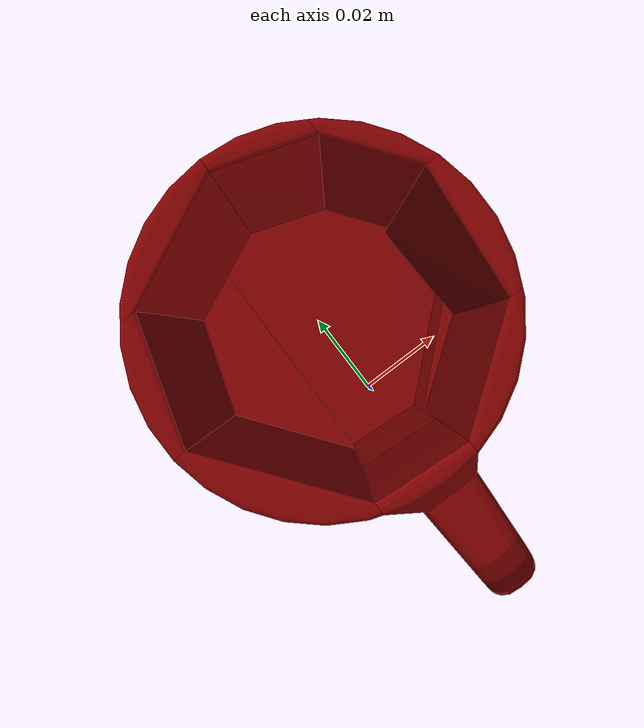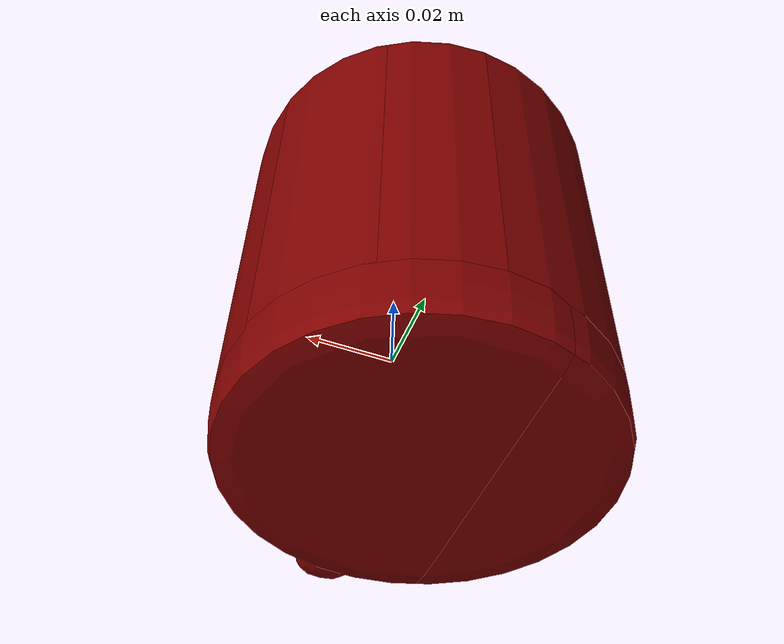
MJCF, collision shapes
<mujoco model="mug_14">
  <asset>
    <mesh file="visual/model_normalized_0.obj" name="model_normalized_0_vis" scale="0.115 0.115 0.115" refquat="-0.7071067811865477 0.0 0.0 0.7071067811865474"/>
    <texture type="2d" name="image0" file="visual/image0.png"/>
    <material name="canecaTex" texture="image0" specular="0.5" shininess="0.321677441"/>
    <mesh file="collision/collision_mesh_collision_0.obj" name="mug_collision_mesh_0" scale="0.115 0.115 0.115" refquat="-0.7071067811865477 0.0 0.0 0.7071067811865474"/>
    <mesh file="collision/collision_mesh_collision_1.obj" name="mug_collision_mesh_1" scale="0.115 0.115 0.115" refquat="-0.7071067811865477 0.0 0.0 0.7071067811865474"/>
    <mesh file="collision/collision_mesh_collision_2.obj" name="mug_collision_mesh_2" scale="0.115 0.115 0.115" refquat="-0.7071067811865477 0.0 0.0 0.7071067811865474"/>
    <mesh file="collision/collision_mesh_collision_3.obj" name="mug_collision_mesh_3" scale="0.115 0.115 0.115" refquat="-0.7071067811865477 0.0 0.0 0.7071067811865474"/>
    <mesh file="collision/collision_mesh_collision_4.obj" name="mug_collision_mesh_4" scale="0.115 0.115 0.115" refquat="-0.7071067811865477 0.0 0.0 0.7071067811865474"/>
    <mesh file="collision/collision_mesh_collision_5.obj" name="mug_collision_mesh_5" scale="0.115 0.115 0.115" refquat="-0.7071067811865477 0.0 0.0 0.7071067811865474"/>
    <mesh file="collision/collision_mesh_collision_6.obj" name="mug_collision_mesh_6" scale="0.115 0.115 0.115" refquat="-0.7071067811865477 0.0 0.0 0.7071067811865474"/>
    <mesh file="collision/collision_mesh_collision_7.obj" name="mug_collision_mesh_7" scale="0.115 0.115 0.115" refquat="-0.7071067811865477 0.0 0.0 0.7071067811865474"/>
    <mesh file="collision/collision_mesh_collision_8.obj" name="mug_collision_mesh_8" scale="0.115 0.115 0.115" refquat="-0.7071067811865477 0.0 0.0 0.7071067811865474"/>
    <mesh file="collision/collision_mesh_collision_9.obj" name="mug_collision_mesh_9" scale="0.115 0.115 0.115" refquat="-0.7071067811865477 0.0 0.0 0.7071067811865474"/>
    <mesh file="collision/collision_mesh_collision_10.obj" name="mug_collision_mesh_10" scale="0.115 0.115 0.115" refquat="-0.7071067811865477 0.0 0.0 0.7071067811865474"/>
    <mesh file="collision/collision_mesh_collision_11.obj" name="mug_collision_mesh_11" scale="0.115 0.115 0.115" refquat="-0.7071067811865477 0.0 0.0 0.7071067811865474"/>
    <mesh file="collision/collision_mesh_collision_12.obj" name="mug_collision_mesh_12" scale="0.115 0.115 0.115" refquat="-0.7071067811865477 0.0 0.0 0.7071067811865474"/>
    <mesh file="collision/collision_mesh_collision_13.obj" name="mug_collision_mesh_13" scale="0.115 0.115 0.115" refquat="-0.7071067811865477 0.0 0.0 0.7071067811865474"/>
    <mesh file="collision/collision_mesh_collision_14.obj" name="mug_collision_mesh_14" scale="0.115 0.115 0.115" refquat="-0.7071067811865477 0.0 0.0 0.7071067811865474"/>
    <mesh file="collision/collision_mesh_collision_15.obj" name="mug_collision_mesh_15" scale="0.115 0.115 0.115" refquat="-0.7071067811865477 0.0 0.0 0.7071067811865474"/>
  </asset>
  <default>
    <default class="region">
      <geom group="1" conaffinity="0" contype="0" rgba="0 1 0 0"/>
    </default>
    <default class="collision">
      <geom group="0" rgba="0.5 0 0 0.5" density="1000.0"/>
    </default>
  </default>
  <worldbody>
    <body>
      <body name="object">
        <geom solimp="0.998 0.998 0.001" solref="0.001 1" density="100" friction="0.95 0.3 0.1" type="mesh" mesh="model_normalized_0_vis" conaffinity="0" contype="0" group="1" material="canecaTex"/>
        <geom class="region" name="reg_bbox" type="box" pos="0.0 0.0 1.7250000022839275e-09" size="0.039281775899999996 0.0575 0.045194499175"/>
        <geom mesh="mug_collision_mesh_0" type="mesh" class="collision"/>
        <geom mesh="mug_collision_mesh_1" type="mesh" class="collision"/>
        <geom mesh="mug_collision_mesh_2" type="mesh" class="collision"/>
        <geom mesh="mug_collision_mesh_3" type="mesh" class="collision"/>
        <geom mesh="mug_collision_mesh_4" type="mesh" class="collision"/>
        <geom mesh="mug_collision_mesh_5" type="mesh" class="collision"/>
        <geom mesh="mug_collision_mesh_6" type="mesh" class="collision"/>
        <geom mesh="mug_collision_mesh_7" type="mesh" class="collision"/>
        <geom mesh="mug_collision_mesh_8" type="mesh" class="collision"/>
        <geom mesh="mug_collision_mesh_9" type="mesh" class="collision"/>
        <geom mesh="mug_collision_mesh_10" type="mesh" class="collision"/>
        <geom mesh="mug_collision_mesh_11" type="mesh" class="collision"/>
        <geom mesh="mug_collision_mesh_12" type="mesh" class="collision"/>
        <geom mesh="mug_collision_mesh_13" type="mesh" class="collision"/>
        <geom mesh="mug_collision_mesh_14" type="mesh" class="collision"/>
        <geom mesh="mug_collision_mesh_15" type="mesh" class="collision"/>
        <geom rgba="0 0 0 0" size="0.038 0.035" pos="0 0.018 0.0" type="cylinder" name="liquid" class="region"/>
        <geom rgba="0 0 0 0 " size="0.0345 0.038" pos="0 0.018 0.005" type="cylinder" name="reg_int" class="region"/>
      </body>
    </body>
  </worldbody>
</mujoco>
